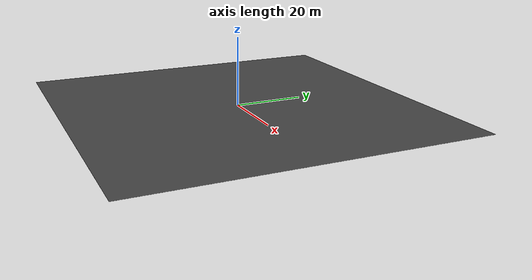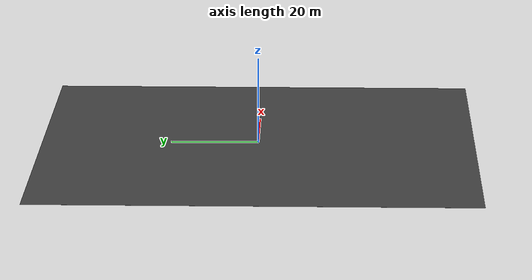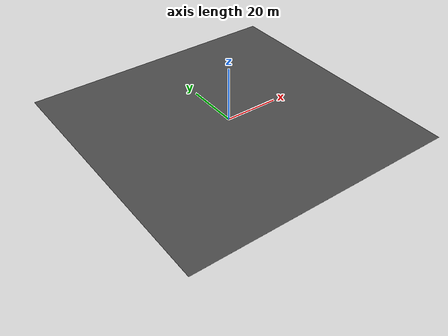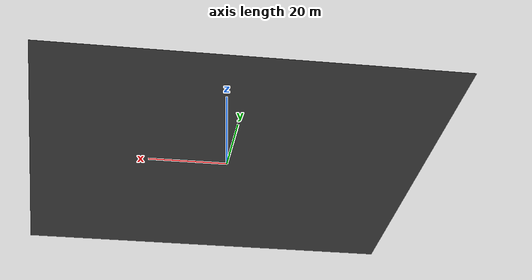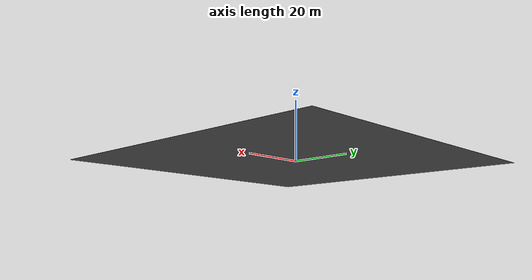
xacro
<?xml version="1.0"?>
<robot name="map_world" xmlns:xacro="http://www.ros.org/wiki/xacro">

  <material name="ground_color">
    <color rgba="0.3 0.3 0.3 1"/>
  </material>

  <link name="ground">
    <visual>
      <geometry>
        <box size="100 100 0.01"/>
      </geometry>
      <material name="ground_color"/>
    </visual>
    <collision>
      <geometry>
        <box size="100 100 0.01"/>
      </geometry>
    </collision>
  </link>

  <xacro:include filename="$(find fly_simulation)/urdf/quadrotor.xacro"/>

  <xacro:quadrotor parent_link="ground">
    <origin xyz="0 0 0.5" rpy="0 0 0"/>
  </xacro:quadrotor>

</robot>

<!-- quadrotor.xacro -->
<robot xmlns:xacro="http://www.ros.org/wiki/xacro">

  <xacro:macro name="quadrotor" params="parent_link *origin">
    <link name="quad_base_link">
      <visual>
        <geometry>
          <box size="0.3 0.3 0.1"/>
        </geometry>
        <material>
          <color rgba="0.2 0.8 0.2 1"/>
        </material>
      </visual>
      <collision>
        <geometry>
          <box size="0.3 0.3 0.1"/>
        </geometry>
      </collision>
      <inertial>
        <mass value="1.0"/>
        <inertia ixx="0.01" ixy="0" ixz="0" iyy="0.01" iyz="0" izz="0.01"/>
      </inertial>
    </link>
    <joint name="quad_base_joint" type="fixed">
      <parent link="${parent_link}"/>
      <child link="quad_base_link"/>
      <xacro:insert_block name="origin"/>
    </joint>
  </xacro:macro>

</robot>
